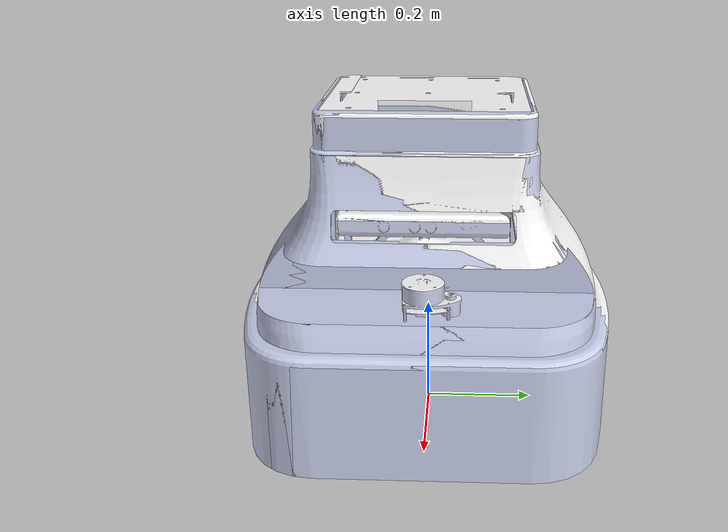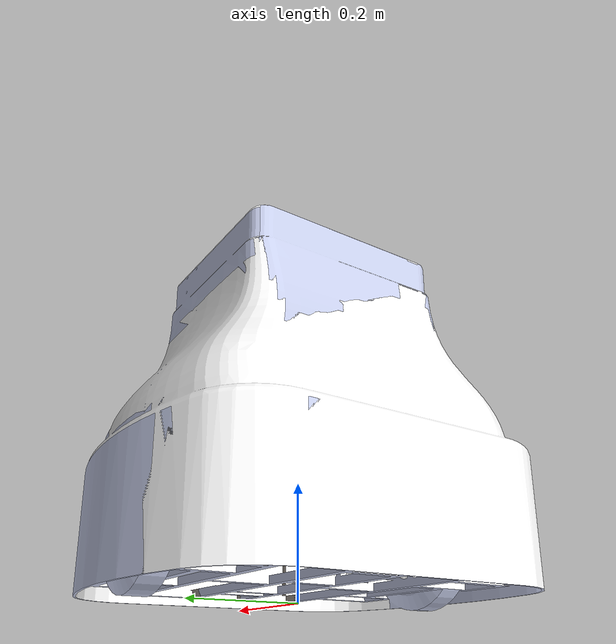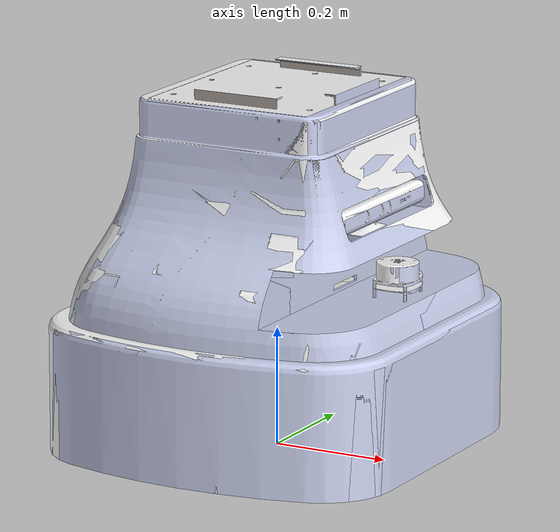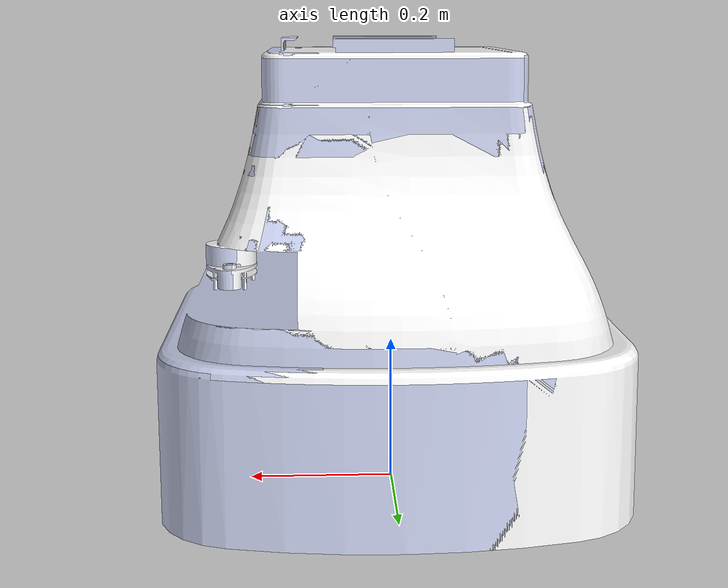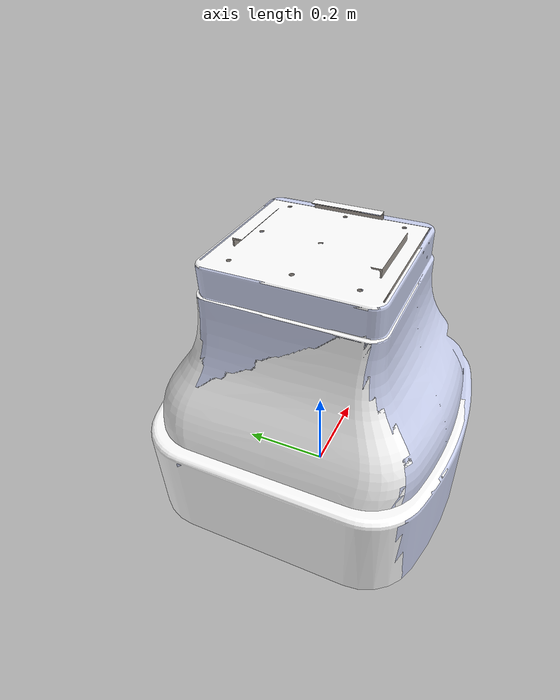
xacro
<?xml version="1.0" encoding="utf-8"?>
<robot name="URDF_Robot" xmlns:xacro="http://www.ros.org/wiki/xacro">
  <!-- Include your STL paths as parameters -->
  <xacro:property name="base_link_mesh" value="package://robot_diff/meshes/base_link.STL"/>
  <xacro:property name="right_wheel_mesh" value="package://robot_diff/meshes/right_wheel.STL"/>
  <xacro:property name="left_wheel_mesh" value="package://robot_diff/meshes/left_wheel.STL"/>
  <xacro:property name="carcasa_mesh" value="package://robot_diff/meshes/Carcasa.STL"/>
  <xacro:property name="lidar_mesh" value="package://robot_diff/meshes/Lidar_link.STL"/>
  <xacro:property name="kinect_mesh" value="package://robot_diff/meshes/Kinect_link.STL"/>

  <link name="base_link">
    <inertial>
      <origin xyz="0.0045272 2.4147E-15 0.34647" rpy="0 0 0" />
      <mass value="8.4929" />
      <inertia ixx="0.055815" ixy="-6.4277E-05" ixz="2.5223E-06" iyy="0.062727" iyz="0.0014237" izz="0.073696" />
    </inertial>
    <visual>
      <origin xyz="0 0 0" rpy="0 0 0" />
      <geometry>
        <mesh filename="${base_link_mesh}" />
      </geometry>
      <material name="">
        <color rgba="0.65098 0.61961 0.58824 1" />
      </material>
    </visual>
    <collision>
      <origin xyz="0 0 0" rpy="0 0 0" />
      <geometry>
        <mesh filename="${base_link_mesh}" />
      </geometry>
    </collision>
  </link>

  <link name="right_wheel">
    <inertial>
      <origin xyz="-1.1102E-16 -0.03 0" rpy="0 0 0" />
      <mass value="1.9224" />
      <inertia ixx="0.0063801" ixy="-4.796E-19" ixz="-1.062E-19" iyy="0.011839" iyz="6.3001E-19" izz="0.0063801" />
    </inertial>
    <visual>
      <origin xyz="0 0 0" rpy="0 0 0" />
      <geometry>
        <mesh filename="${right_wheel_mesh}" />
      </geometry>
      <material name="">
        <color rgba="0.79216 0.81961 0.93333 1" />
      </material>
    </visual>
    <collision>
      <origin xyz="0 0 0" rpy="0 0 0" />
      <geometry>
        <mesh filename="${right_wheel_mesh}" />
      </geometry>
    </collision>
  </link>

  <joint name="joint_right_wheel" type="continuous">
    <origin xyz="0.00425 -0.24475 0.10979" rpy="0 0 0" />
    <parent link="base_link" />
    <child link="right_wheel" />
    <axis xyz="0 1 0" />
  </joint>

  <link name="left_wheel">
    <inertial>
      <origin xyz="0 0.03 0" rpy="0 0 0" />
      <mass value="1.9224" />
      <inertia ixx="0.0063801" ixy="-1.3791E-19" ixz="-3.8919E-19" iyy="0.011839" iyz="-5.6319E-19" izz="0.0063801" />
    </inertial>
    <visual>
      <origin xyz="0 0 0" rpy="0 0 0" />
      <geometry>
        <mesh filename="${left_wheel_mesh}" />
      </geometry>
      <material name="">
        <color rgba="0.79216 0.81961 0.93333 1" />
      </material>
    </visual>
    <collision>
      <origin xyz="0 0 0" rpy="0 0 0" />
      <geometry>
        <mesh filename="${left_wheel_mesh}" />
      </geometry>
    </collision>
  </link>

  <joint name="joint_left_wheel" type="continuous">
    <origin xyz="0.00675 0.24475 0.10979" rpy="0 0 0" />
    <parent link="base_link" />
    <child link="left_wheel" />
    <axis xyz="0 1 0" />
  </joint>

  <link name="Carcasa">
    <inertial>
      <origin xyz="0.035854 0.045075 0.34163" rpy="0 0 0" />
      <mass value="12.342" />
      <inertia ixx="0.3505" ixy="2.0646E-06" ixz="-0.0035872" iyy="0.29139" iyz="-3.7841E-06" izz="0.39506" />
    </inertial>
    <visual>
      <origin xyz="0 0 0" rpy="0 0 0" />
      <geometry>
        <mesh filename="${carcasa_mesh}" />
      </geometry>
      <material name="">
        <color rgba="0.79216 0.81961 0.93333 1" />
      </material>
    </visual>
    <collision>
      <origin xyz="0 0 0" rpy="0 0 0" />
      <geometry>
        <mesh filename="${carcasa_mesh}" />
      </geometry>
    </collision>
  </link>

  <joint name="joint_carcasa" type="fixed">
    <origin xyz="0 0 0.013293" rpy="0 0 0" />
    <parent link="base_link" />
    <child link="Carcasa" />
    <axis xyz="0 0 0" />
  </joint>

  <link name="Lidar_link">
    <inertial>
      <origin xyz="9.1926E-05 -0.0074835 0.010668" rpy="0 0 0" />
      <mass value="1.3308" />
      <inertia ixx="0.0009607" ixy="8.0198E-07" ixz="3.0916E-06" iyy="0.00061492" iyz="0.00015824" izz="0.0010982" />
    </inertial>
    <visual>
      <origin xyz="0 0 0" rpy="0 0 0" />
      <geometry>
        <mesh filename="${lidar_mesh}" />
      </geometry>
      <material name="">
        <color rgba="0.79216 0.81961 0.93333 1" />
      </material>
    </visual>
    <collision>
      <origin xyz="0 0 0" rpy="0 0 0" />
      <geometry>
        <mesh filename="${lidar_mesh}" />
      </geometry>
    </collision>
  </link>

  <joint name="joint_lidar" type="fixed">
    <origin xyz="0.2225 0.014498 0.30689" rpy="0 0 -1.5708" />
    <parent link="base_link" />
    <child link="Lidar_link" />
    <axis xyz="0 0 0" />
  </joint>

  <link name="Kinect_link">
    <inertial>
      <origin xyz="0 0 0" rpy="0 0 0" />
      <mass value="0" />
      <inertia ixx="0" ixy="0" ixz="0" iyy="0" iyz="0" izz="0" />
    </inertial>
    <visual>
      <origin xyz="0 0 0" rpy="0 0 0" />
      <geometry>
        <mesh filename="${kinect_mesh}" />
      </geometry>
      <material name="">
        <color rgba="1 1 1 1" />
      </material>
    </visual>
    <collision>
      <origin xyz="0 0 0" rpy="0 0 0" />
      <geometry>
        <mesh filename="${kinect_mesh}" />
      </geometry>
    </collision>
  </link>

  <joint name="joint_kinect" type="fixed">
    <origin xyz="0.174465135528564 0.00688258604257161 0.38554299031729" rpy="-1.5708 0 -1.5708" />
    <parent link="base_link" />
    <child link="Kinect_link" />
    <axis xyz="0 0 0" />
  </joint>
</robot>
